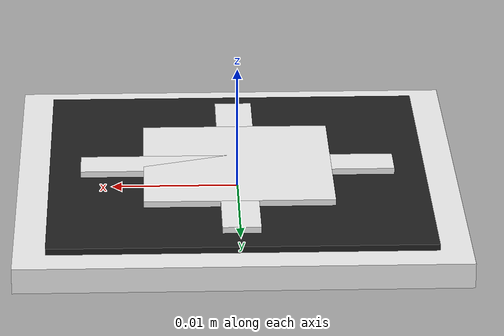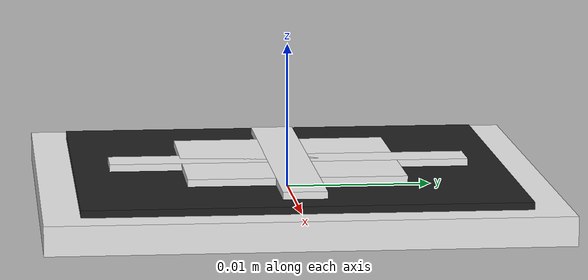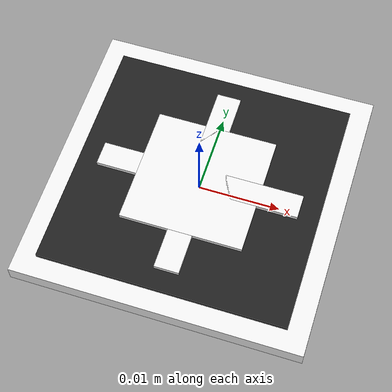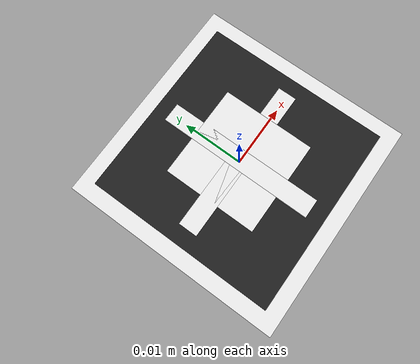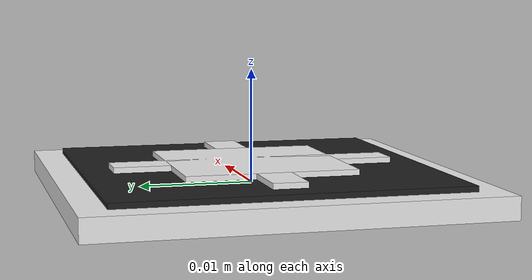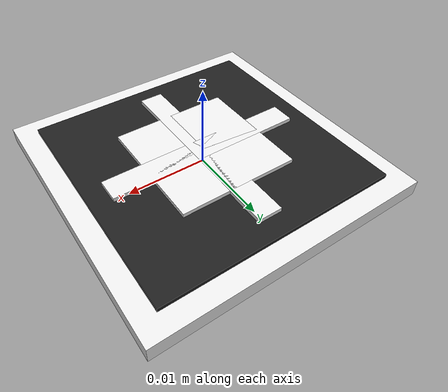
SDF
<?xml version="1.0" ?>
<sdf version="1.7">
  <model name="aruco_marker_103">
    <static>true</static>
    <link name="marker_link">
      <!-- Collision -->
      <collision name="marker_collision">
        <geometry>
          <box>
            <size>0.035 0.035 0.002</size>  <!-- 3.5cm x 3.5cm x 2mm -->
          </box>
        </geometry>
      </collision>

      <!-- Base visual (white background) -->
      <visual name="marker_visual">
        <geometry>
          <box>
            <size>0.035 0.035 0.002</size>  <!-- 3.5cm x 3.5cm -->
          </box>
        </geometry>
        <material>
          <script>
            <uri>file://media/materials/scripts/gazebo.material</uri>
            <name>Gazebo/White</name>
          </script>
        </material>
      </visual>

      <visual name="aruco_pattern">
        <pose>0 0 0.001 0 0 0</pose>
        <geometry>
          <box>
            <size>0.03 0.03 0.001</size>  <!-- ArUco 패턴 -->
          </box>
        </geometry>
        <material>
          <script>
            <uri>file://media/materials/scripts/gazebo.material</uri>
            <name>Gazebo/Black</name>
          </script>
        </material>
      </visual>

      <!-- Different pattern for ID 103 -->
      <visual name="pattern_103_center">
        <pose>0 0 0.0015 0 0 0</pose>
        <geometry>
          <box>
            <size>0.015 0.015 0.001</size>
          </box>
        </geometry>
        <material>
          <script>
            <uri>file://media/materials/scripts/gazebo.material</uri>
            <name>Gazebo/White</name>
          </script>
        </material>
      </visual>

      <visual name="pattern_103_cross_h">
        <pose>0 0 0.0015 0 0 0</pose>
        <geometry>
          <box>
            <size>0.025 0.003 0.001</size>
          </box>
        </geometry>
        <material>
          <script>
            <uri>file://media/materials/scripts/gazebo.material</uri>
            <name>Gazebo/White</name>
          </script>
        </material>
      </visual>

      <visual name="pattern_103_cross_v">
        <pose>0 0 0.0015 0 0 0</pose>
        <geometry>
          <box>
            <size>0.003 0.025 0.001</size>
          </box>
        </geometry>
        <material>
          <script>
            <uri>file://media/materials/scripts/gazebo.material</uri>
            <name>Gazebo/White</name>
          </script>
        </material>
      </visual>

      <inertial>
        <mass>0.01</mass>
        <inertia>
          <ixx>0.000001</ixx>
          <iyy>0.000001</iyy>
          <izz>0.000001</izz>
        </inertia>
      </inertial>
    </link>
  </model>
</sdf>
